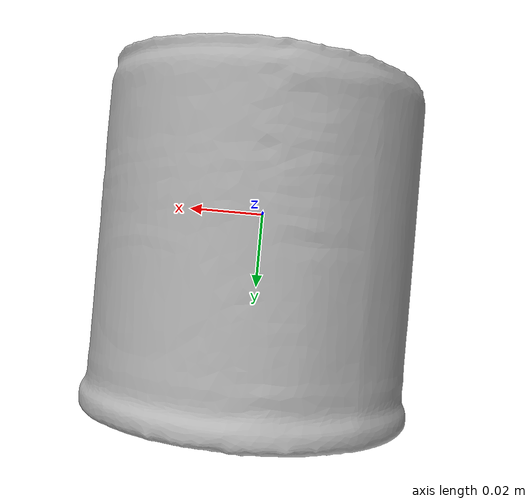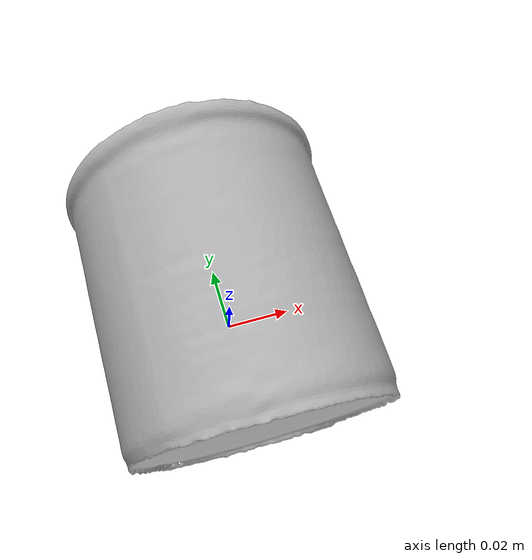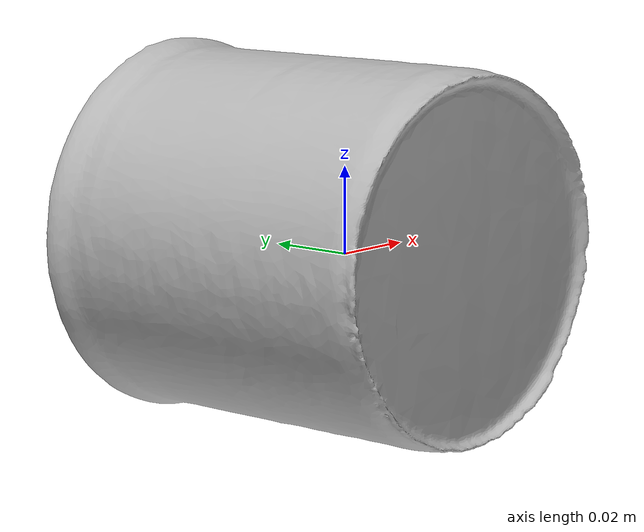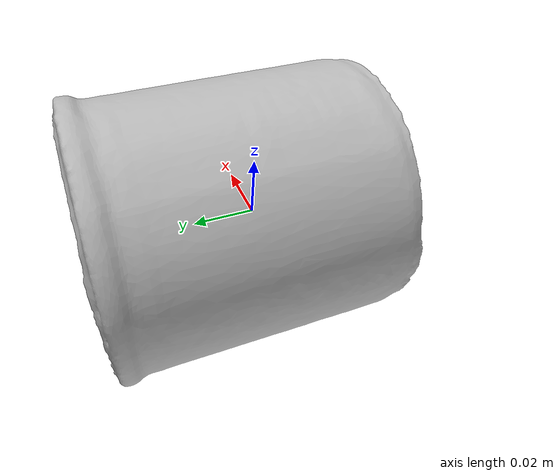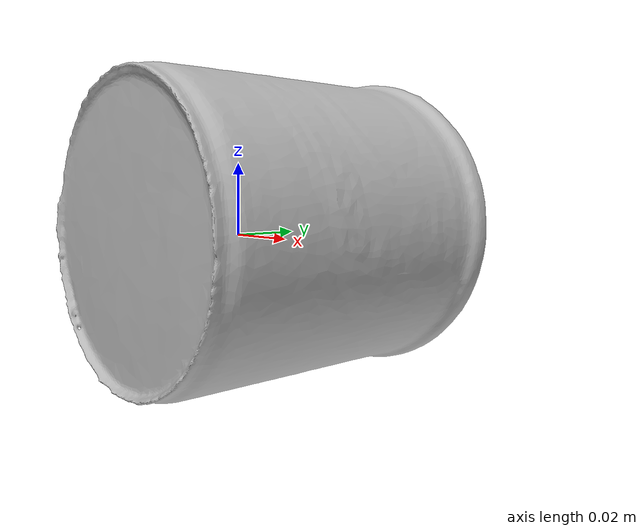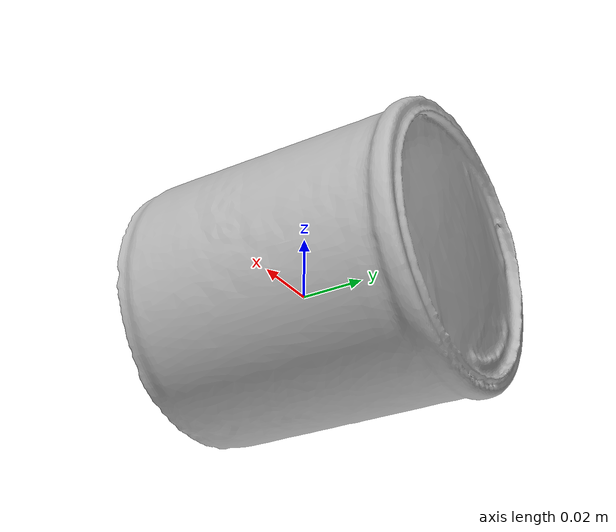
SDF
<?xml version='1.0'?>
<sdf version="1.4">
  <model name="Peanuts2">
    <static>false</static>
    <link name="link">
      <inertial>
        <pose>0.0011602609779622966 0.009569822748545159 0.001819994882070162 -1.5632927091041513 0.8130600194075576 0.014448314034923167</pose>
        <mass>0.0329721945045321</mass>
        <inertia>
          <ixx>6.14520806219672e-05</ixx>
          <ixy>-1.5845801651945137e-20</ixy>
          <ixz>6.153123852954318e-22</ixz>
          <iyy>6.140789838569597e-05</iyy>
          <iyz>3.2089111592348396e-22</iyz>
          <izz>4.842467338782105e-05</izz>
        </inertia>
      </inertial>
      <collision name="collision">
        <geometry>
          <mesh>
            <!-- Use a downsampled mesh for collisions -->
            <uri>model:///Peanuts2/Peanuts2_250_collision.obj</uri>
	        </mesh>
        </geometry>
        <surface>
      </surface>
      </collision>
      <visual name="visual">
        <geometry>
          <mesh>
            <uri>model:///Peanuts2/Peanuts2_25k_tex.obj</uri>
	        </mesh>
        </geometry>
        <material>
          <script>
            <uri>model:///Peanuts2/Peanuts2.material</uri>
            <name>Peanuts2</name>
          </script>
        </material>
      </visual>
    </link>
  </model>
</sdf>
